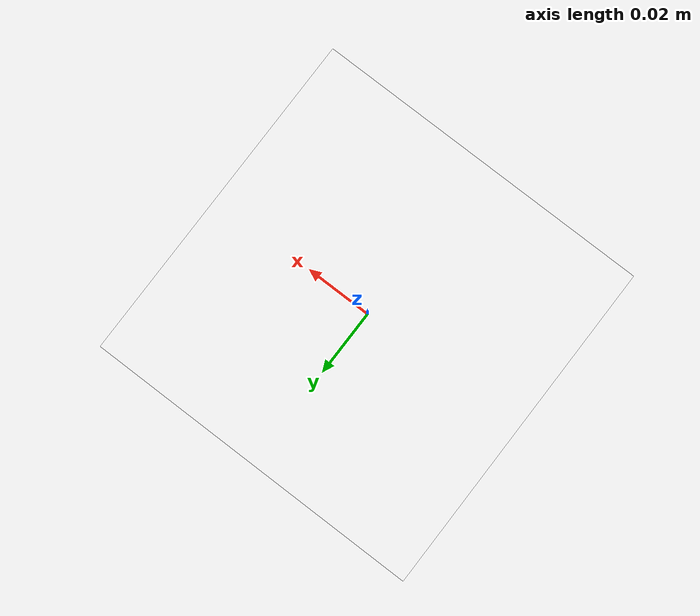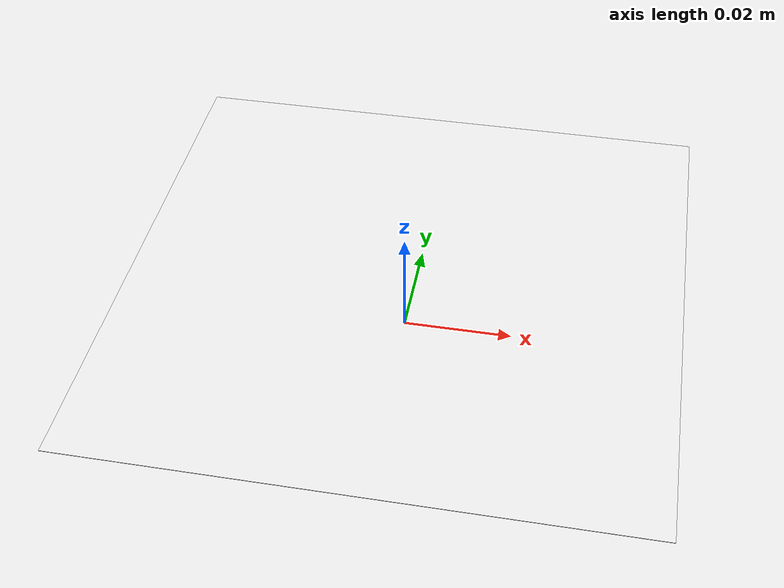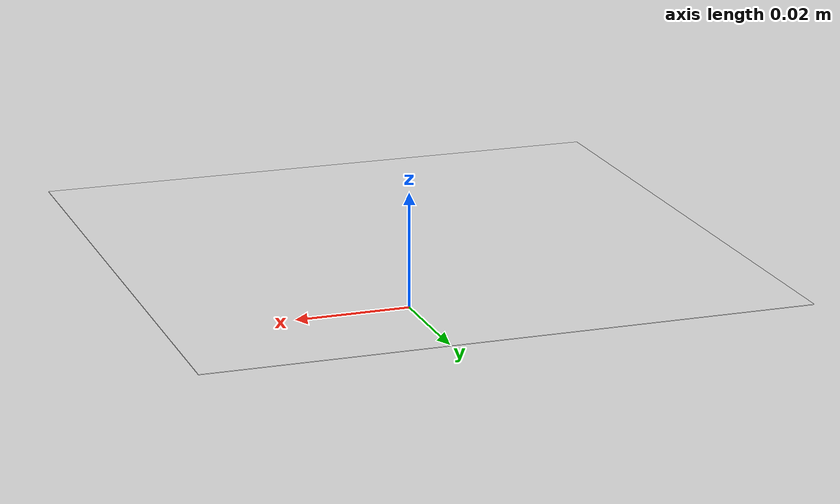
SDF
<?xml version="1.0" encoding="UTF-8"?>
<sdf version="1.9">
  <world name="aruco_staged">
    <physics type="ode">
      <max_step_size>0.004</max_step_size>
      <real_time_factor>1.0</real_time_factor>
      <real_time_update_rate>250</real_time_update_rate>
    </physics>
    <gravity>0 0 -9.8</gravity>
    <magnetic_field>6e-06 2.3e-05 -4.2e-05</magnetic_field>
    <atmosphere type="adiabatic"/>
    <scene>
      <grid>false</grid>
      <ambient>0.4 0.4 0.4 1</ambient>
      <background>0.7 0.7 0.7 1</background>
      <shadows>true</shadows>
    </scene>

    <model name="ground_plane">
      <static>true</static>
      <link name="link">
        <collision name="collision">
          <geometry>
            <plane>
              <normal>0 0 1</normal>
              <size>1 1</size>
            </plane>
          </geometry>
          <surface>
            <friction>
              <ode/>
            </friction>
            <bounce/>
            <contact/>
          </surface>
        </collision>
        <visual name="visual">
          <geometry>
            <plane>
              <normal>0 0 1</normal>
              <size>100 100</size>
            </plane>
          </geometry>
          <material>
            <ambient>0.8 0.8 0.8 1</ambient>
            <diffuse>0.8 0.8 0.8 1</diffuse>
            <specular>0.8 0.8 0.8 1</specular>
          </material>
        </visual>
        <pose>0 0 0 0 -0 0</pose>
        <inertial>
          <pose>0 0 0 0 -0 0</pose>
          <mass>1</mass>
          <inertia>
            <ixx>1</ixx>
            <ixy>0</ixy>
            <ixz>0</ixz>
            <iyy>1</iyy>
            <iyz>0</iyz>
            <izz>1</izz>
          </inertia>
        </inertial>
        <enable_wind>false</enable_wind>
      </link>
      <pose>0 0 0 0 -0 0</pose>
      <self_collide>false</self_collide>
    </model>

    <light name="sunUTC" type="directional">
      <pose>0 0 500 0 -0 0</pose>
      <cast_shadows>true</cast_shadows>
      <intensity>1</intensity>
      <direction>0.001 0.625 -0.78</direction>
      <diffuse>0.904 0.904 0.904 1</diffuse>
      <specular>0.271 0.271 0.271 1</specular>
      <attenuation>
        <range>2000</range>
        <linear>0</linear>
        <constant>1</constant>
        <quadratic>0</quadratic>
      </attenuation>
      <spot>
        <inner_angle>0</inner_angle>
        <outer_angle>0</outer_angle>
        <falloff>0</falloff>
      </spot>
    </light>
    <spherical_coordinates>
      <surface_model>EARTH_WGS84</surface_model>
      <world_frame_orientation>ENU</world_frame_orientation>
      <latitude_deg>47.397971057728974</latitude_deg>
      <longitude_deg> 8.546163739800146</longitude_deg>
      <elevation>0</elevation>
    </spherical_coordinates>

    <include>
      <uri>model://arucotag_0_small</uri>
      <name>arucotag_0_small</name>
      <pose>0 0 0.011 0 0 3.141</pose>
    </include>

    <include>
      <uri>model://arucotag_19_small</uri>
      <name>arucotag_19_small</name>
      <pose>0 0 0.01 0 0 3.141</pose>
    </include>

  </world>
</sdf>

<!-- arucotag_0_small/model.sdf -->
<sdf version='1.9'>
  <model name='arucotag_0_small'>
    <static>true</static>
    <pose>0 0 0.001 0 0 0</pose>
    <link name='base_0'>
      <visual name='base_visual'>
        <geometry>
          <plane>
            <normal>0 0 1</normal>
            <size>0.1 0.1</size>
          </plane>
        </geometry>
        <material>
          <diffuse>1 1 1 1</diffuse>
          <specular>0.4 0.4 0.4 1</specular>
          <pbr>
            <metal>
              <albedo_map>model://arucotag_0/4x4_1000-0.png</albedo_map>
            </metal>
          </pbr>
        </material>
      </visual>

      <!-- GPS tracking tag for px4 groundtruth -->
      <sensor name="navsat_sensor" type="navsat">
        <gz_frame_id>base_0</gz_frame_id>
        <always_on>1</always_on>
        <update_rate>30</update_rate>

        <navsat>
          <position_sensing>
          <horizontal>
            <noise type="gaussian">
              <stddev>0</stddev>
            </noise>
          </horizontal>
        </position_sensing>
        </navsat>

        <topic>/tag/itag/gz_groundtruth_gps</topic>
      </sensor>

    </link>

  </model>
</sdf>

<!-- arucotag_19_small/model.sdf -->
<sdf version='1.9'>
  <model name='arucotag_19_small'>
    <static>true</static>
    <pose>0 0 0.001 0 0 0</pose>
    <link name='base_19'>
      <visual name='base_visual'>
        <geometry>
          <plane>
            <normal>0 0 1</normal>
            <size>.5 .5</size>
          </plane>
        </geometry>
        <material>
          <diffuse>1 1 1 1</diffuse>
          <specular>0.4 0.4 0.4 1</specular>
          <pbr>
            <metal>
              <albedo_map>model://arucotag_19/6x6_1000-19.png</albedo_map>
            </metal>
          </pbr>
        </material>
      </visual>

      <!-- GPS tracking tag for px4 groundtruth -->
      <sensor name="navsat_sensor" type="navsat">
        <gz_frame_id>base_19</gz_frame_id>
        <always_on>1</always_on>
        <update_rate>30</update_rate>

        <navsat>
          <position_sensing>
          <horizontal>
            <noise type="gaussian">
              <stddev>0</stddev>
            </noise>
          </horizontal>
        </position_sensing>
        </navsat>

        <topic>/tag/otag/gz_groundtruth_gps</topic>
      </sensor>

    </link>

  </model>
</sdf>
